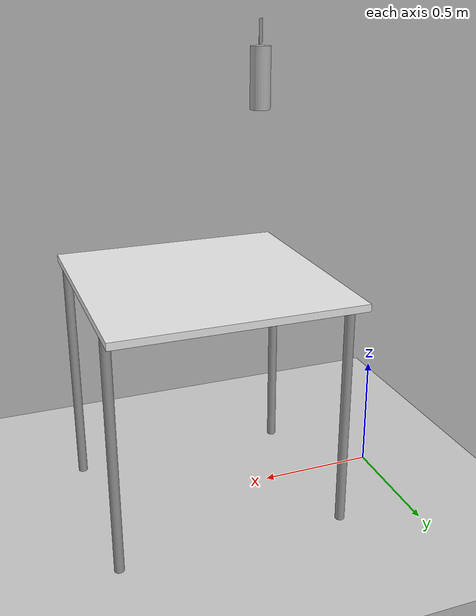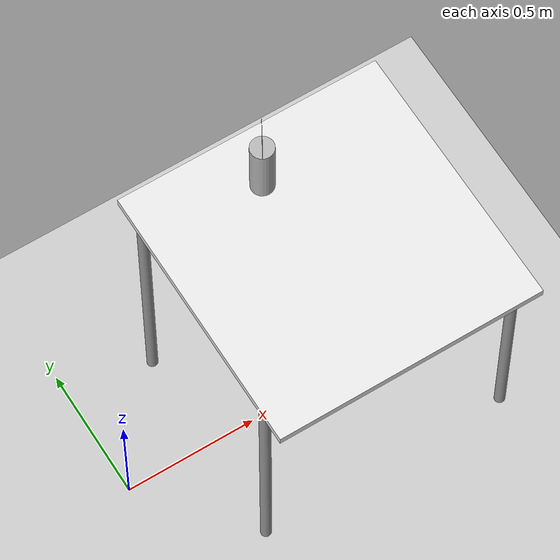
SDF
<sdf version="1.3">
 <world name="default">
  <physics type="ode">
   <gravity>0 0 -9.81</gravity>
   <update_rate>1000</update_rate>
   <ode>
    <solver><type>quick</type><dt>0.001</dt><iters>20</iters><sor>1.0</sor></solver>
    <constraints>
     <cfm>0.0</cfm>
     <erp>0.2</erp>
     <contact_max_correcting_vel>100.0</contact_max_correcting_vel>
     <contact_surface_layer>0.0</contact_surface_layer>
    </constraints>
   </ode>
  </physics>
  <light type="directional" name="light1">
   <pose>-2 0 4 0 0 0</pose>
   <diffuse>1.0 1.0 1.0 1</diffuse>
   <specular>0.1 0.1 0.1 1</specular>
   <attenuation>
    <range>20</range>
    <constant>0.9</constant>
    <linear>0.01</linear>
    <quadratic>0.001</quadratic>
   </attenuation>
   <direction>0.2  0.0  -1.0</direction>
  </light>
  <light type="spot" name="light2">
   <pose>0 0 3.5 0 0 0</pose>
   <diffuse>1.0 1.0 1.0 1</diffuse>
   <specular>0.1 0.1 0.1 1</specular>
   <attenuation>
    <range>20</range>
    <constant>0.9</constant>
    <linear>0.01</linear>
    <quadratic>0.001</quadratic>
   </attenuation>
   <direction>0  0.0  -1.0</direction>
   <spot><inner_angle>0.7</inner_angle><outer_angle>1.0</outer_angle><falloff>1.0</falloff></spot>
  </light>
  <include><uri>model://ground_plane</uri></include>
  <include><uri>model://table_1m</uri><name>table1</name><pose>0.8 0 0 0 0 0</pose></include>
  <include><uri>model://pringles_with_marker</uri><pose>0.55 0 1.8 0 0 2.62</pose></include>
 </world>
</sdf>

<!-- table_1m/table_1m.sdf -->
<sdf version="1.4">
  <model name="table_1m">
    <static>1</static>
    <link name="link">
      <collision name="surface">
        <pose>0.000000 0.000000 1.010000 0.000000 0.000000 0.000000</pose>
        <geometry>
          <box>
            <size>1.000000 1.010000 0.030000</size>
          </box>
        </geometry>
        <surface>
          <bounce />
          <friction>
            <ode />
          </friction>
          <contact>
            <ode />
          </contact>
        </surface>
      </collision>
      <visual name="visual1">
        <pose>0.000000 0.000000 1.010000 0.000000 0.000000 0.000000</pose>
        <geometry>
          <box>
            <size>1.000000 1.010000 0.030000</size>
          </box>
        </geometry>
        <material>
          <script>
            <uri>file://media/materials/scripts/gazebo.material</uri>
            <name>Gazebo/White</name>
          </script>
        </material>
      </visual>
      <collision name="front_left_leg">
        <pose>0.480000 0.380000 0.500500 0.000000 0.000000 0.000000</pose>
        <geometry>
          <cylinder>
            <radius>0.020000</radius>
            <length>1.010000</length>
          </cylinder>
        </geometry>
        <surface>
          <bounce />
          <friction>
            <ode />
          </friction>
          <contact>
            <ode />
          </contact>
        </surface>
      </collision>
      <visual name="front_left_leg">
        <pose>0.480000 0.380000 0.500500 0.000000 0.000000 0.000000</pose>
        <geometry>
          <cylinder>
            <radius>0.020000</radius>
            <length>1.010000</length>
          </cylinder>
        </geometry>
        <material>
          <script>
            <uri>file://media/materials/scripts/gazebo.material</uri>
            <name>Gazebo/Grey</name>
          </script>
        </material>
      </visual>
      <collision name="front_right_leg">
        <pose>0.480000 -0.380000 0.5005000 0.000000 0.000000 0.000000</pose>
        <geometry>
          <cylinder>
            <radius>0.020000</radius>
            <length>1.010000</length>
          </cylinder>
        </geometry>
        <surface>
          <bounce />
          <friction>
            <ode />
          </friction>
          <contact>
            <ode />
          </contact>
        </surface>
      </collision>
      <visual name="front_right_leg">
        <pose>0.480000 -0.380000 0.500500 0.000000 0.000000 0.000000</pose>
        <geometry>
          <cylinder>
            <radius>0.020000</radius>
            <length>1.010000</length>
          </cylinder>
        </geometry>
        <material>
          <script>
            <uri>file://media/materials/scripts/gazebo.material</uri>
            <name>Gazebo/Grey</name>
          </script>
        </material>
      </visual>
      <collision name="back_right_leg">
        <pose>-0.480000 -0.380000 0.500500 0.000000 0.000000 0.000000</pose>
        <geometry>
          <cylinder>
            <radius>0.020000</radius>
            <length>1.010000</length>
          </cylinder>
        </geometry>
        <surface>
          <bounce />
          <friction>
            <ode />
          </friction>
          <contact>
            <ode />
          </contact>
        </surface>
      </collision>
      <visual name="back_right_leg">
        <pose>-0.480000 -0.380000 0.500500 0.000000 0.000000 0.000000</pose>
        <geometry>
          <cylinder>
            <radius>0.020000</radius>
            <length>1.010000</length>
          </cylinder>
        </geometry>
        <material>
          <script>
            <uri>file://media/materials/scripts/gazebo.material</uri>
            <name>Gazebo/Grey</name>
          </script>
        </material>
      </visual>
      <collision name="back_left_leg">
        <pose>-0.480000 0.380000 0.500500 0.000000 0.000000 0.000000</pose>
        <geometry>
          <cylinder>
            <radius>0.020000</radius>
            <length>1.010000</length>
          </cylinder>
        </geometry>
        <surface>
          <bounce />
          <friction>
            <ode />
          </friction>
          <contact>
            <ode />
          </contact>
        </surface>
      </collision>
      <visual name="back_left_leg">
        <pose>-0.480000 0.380000 0.500500 0.000000 0.000000 0.000000</pose>
        <geometry>
          <cylinder>
            <radius>0.020000</radius>
            <length>1.010000</length>
          </cylinder>
        </geometry>
        <material>
          <script>
            <uri>file://media/materials/scripts/gazebo.material</uri>
            <name>Gazebo/Grey</name>
          </script>
        </material>
      </visual>
      <velocity_decay>
        <linear>0.000000</linear>
        <angular>0.000000</angular>
      </velocity_decay>
      <self_collide>0</self_collide>
      <kinematic>0</kinematic>
      <gravity>1</gravity>
    </link>
  </model>
</sdf>

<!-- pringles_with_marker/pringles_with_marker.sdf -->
<sdf version="1.4">
  <model name="pringles_with_marker">
    <static>0</static>
    <link name="link">
      <inertial>
        <mass>0.25</mass>
        <inertia>
          <ixx>0.000000</ixx>
          <ixy>0.000000</ixy>
          <ixz>0.000000</ixz>
          <iyy>0.000000</iyy>
          <iyz>0.000000</iyz>
          <izz>0.000000</izz>
        </inertia>
      </inertial>
      <collision name="collision">
        <geometry>
          <cylinder>
            <radius>0.04</radius>
            <length>0.235</length>
          </cylinder>
        </geometry>
        <surface>
          <bounce />
          <friction>
            <ode />
          </friction>
          <contact>
            <ode />
          </contact>
        </surface>
      </collision>
      <visual name="visual">
        <geometry>
          <cylinder>
            <radius>0.04</radius>
            <length>0.235</length>
          </cylinder>
        </geometry>
        <material>
          <script>
            <uri>model://pringles/material/scripts</uri>
            <uri>model://pringles/material/textures</uri>
            <name>Custom/pringles</name>
          </script>
        </material>
      </visual>
      <velocity_decay>
        <linear>0.000000</linear>
        <angular>0.000000</angular>
      </velocity_decay>
      <self_collide>0</self_collide>
      <kinematic>0</kinematic>
      <gravity>1</gravity>
    </link>
    <!-- A marker on top of the can -->
    <include>
      <uri>model://marker26_8cm</uri>
      <pose>0 0 0.17 3.14 -1.57 0</pose>
    </include>
  </model>
</sdf>

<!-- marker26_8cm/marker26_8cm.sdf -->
<sdf version='1.3'>
  <model name="pringles">
      <static>0</static>
      <link name="marker">
        <inertial>
          <mass>0.1</mass>
          <inertia>
            <ixx>0.000000</ixx>
            <ixy>0.000000</ixy>
            <ixz>0.000000</ixz>
            <iyy>0.000000</iyy>
            <iyz>0.000000</iyz>
            <izz>0.000000</izz>
          </inertia>
	</inertial>
	<visual name='visual'>
	  <geometry>
	    <box>
             <size>0.09 0.09 0.001</size> <!-- SIZE OF THE MARKER + MARGIN -->
            </box>
	  </geometry>
	  <material>
            <script>
              <uri>file://Media/materials/scripts/markers.material</uri>
              <name>Aruco/marker26_8cm</name>
            </script>
	  </material>
	</visual>
	<collision name='collision'>
	  <geometry>
	    <box>
             <size>0.09 0.09 0.02</size> <!-- SIZE OF THE MARKER + MARGIN -->
            </box>
	  </geometry>
          <surface>
            <bounce/>
            <friction>
              <ode/>
            </friction>
            <contact>
              <ode/>
            </contact>
          </surface>
	</collision>
        <self_collide>1</self_collide>
        <kinematic>0</kinematic>
        <gravity>1</gravity>
      </link>
  </model>
</sdf>
